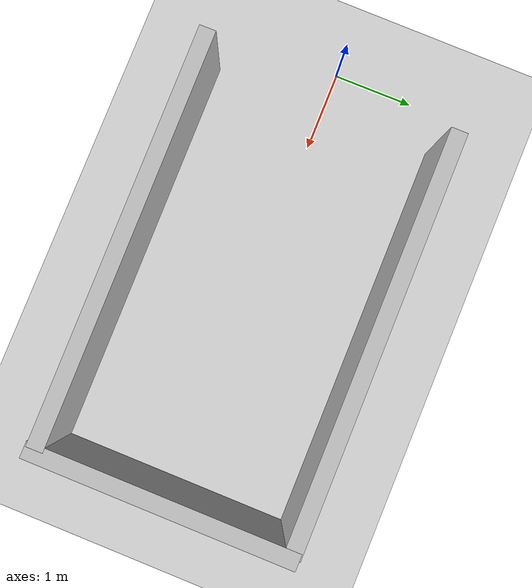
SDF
<?xml version="1.0"?>
<sdf version="1.6">
  <world name="v2-04g-r4-maneuver-s5075">
    <gravity>0 0 -9.81</gravity>
    <physics name="v2_deterministic" type="ode">
      <max_step_size>0.002</max_step_size>
      <real_time_update_rate>500</real_time_update_rate>
    </physics>
    <include>
      <uri>model://sun</uri>
    </include>
    <include>
      <uri>model://ground_plane</uri>
    </include>
    <model name="bay-left">
      <static>true</static>
      <pose>3.008564700 1.516002926 0.600000000 0 0 0.002609167</pose>
      <link name="link">
        <collision name="collision">
          <geometry>
            <box>
              <size>5.000000 0.200000 1.200000</size>
            </box>
          </geometry>
        </collision>
        <visual name="visual">
          <geometry>
            <box>
              <size>5.000000 0.200000 1.200000</size>
            </box>
          </geometry>
        </visual>
      </link>
    </model>
    <model name="bay-right">
      <static>true</static>
      <pose>2.985556922 -1.489633100 0.600000000 0 0 0.004891111</pose>
      <link name="link">
        <collision name="collision">
          <geometry>
            <box>
              <size>5.000000 0.200000 1.200000</size>
            </box>
          </geometry>
        </collision>
        <visual name="visual">
          <geometry>
            <box>
              <size>5.000000 0.200000 1.200000</size>
            </box>
          </geometry>
        </visual>
      </link>
    </model>
    <model name="bay-back">
      <static>true</static>
      <pose>5.524890762 0.008911363 0.600000000 0 0 -0.000666356</pose>
      <link name="link">
        <collision name="collision">
          <geometry>
            <box>
              <size>0.200000 3.200000 1.200000</size>
            </box>
          </geometry>
        </collision>
        <visual name="visual">
          <geometry>
            <box>
              <size>0.200000 3.200000 1.200000</size>
            </box>
          </geometry>
        </visual>
      </link>
    </model>
  </world>
</sdf>
